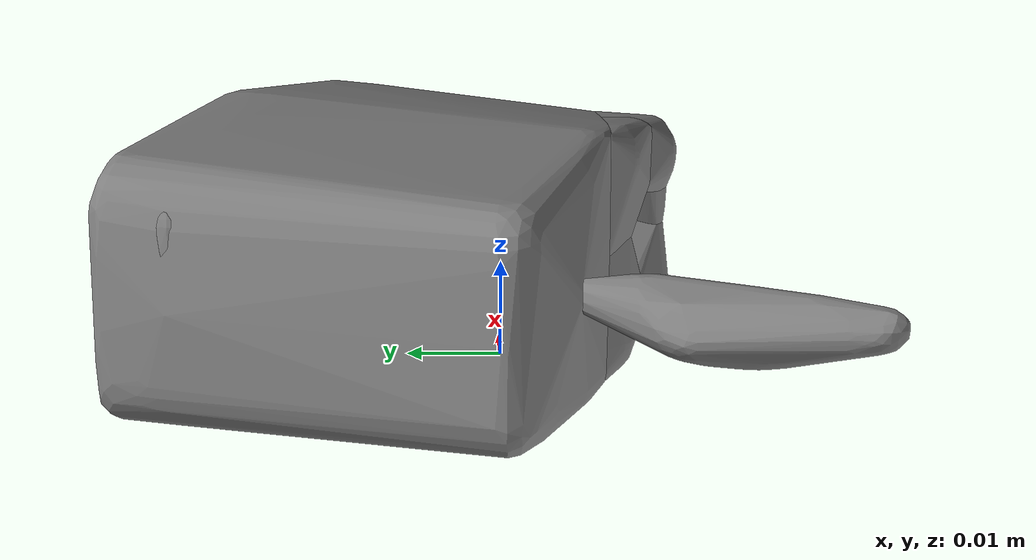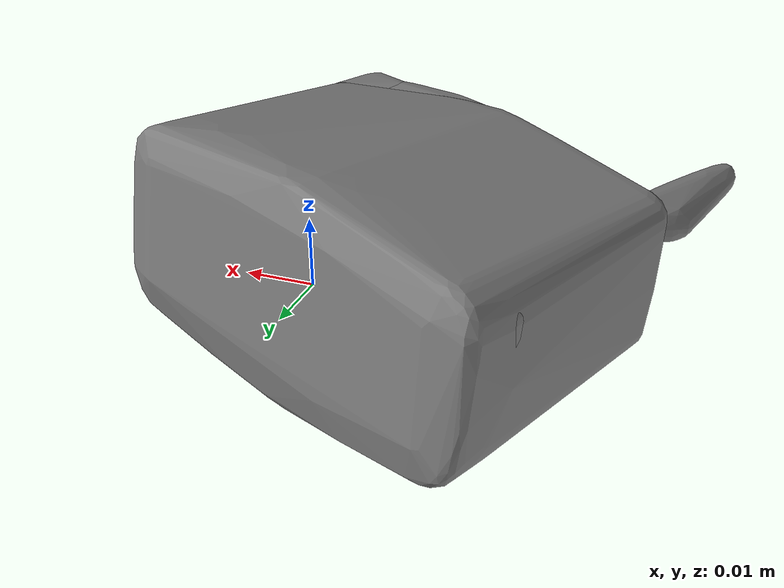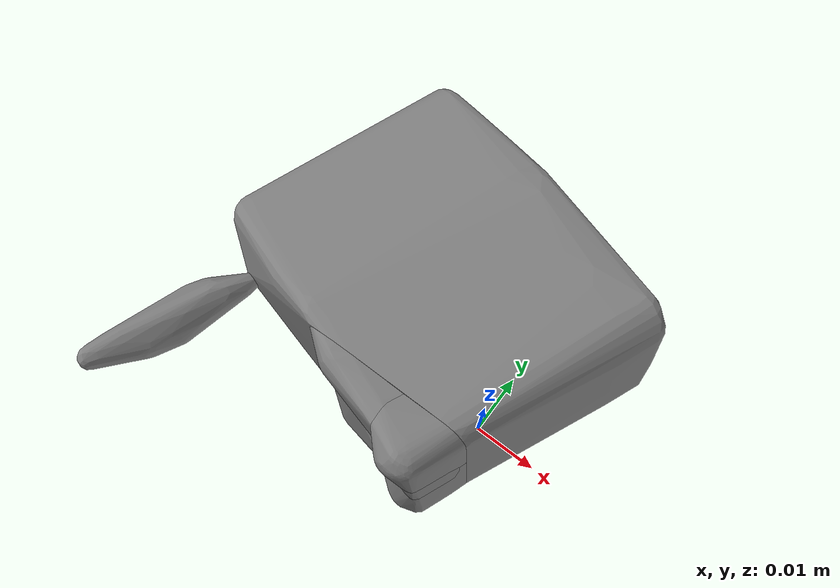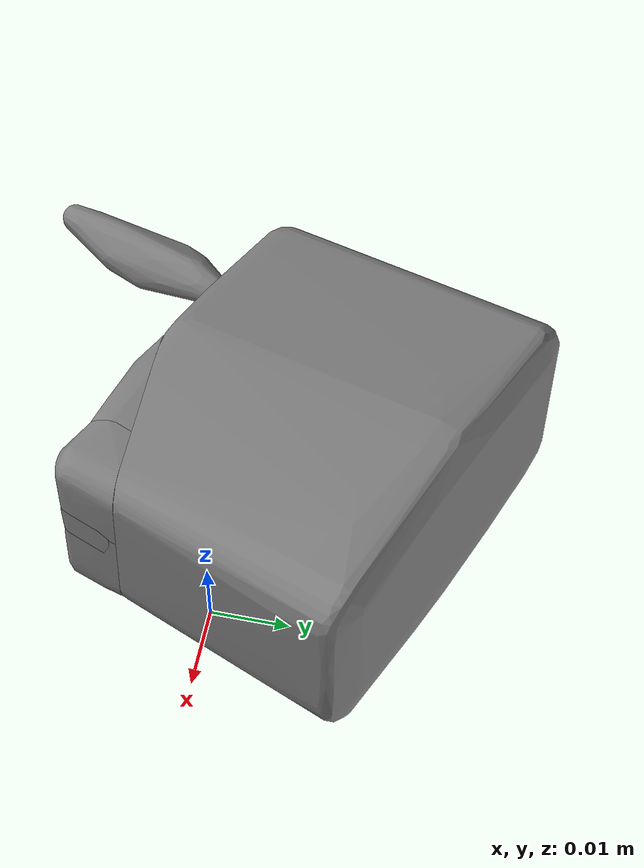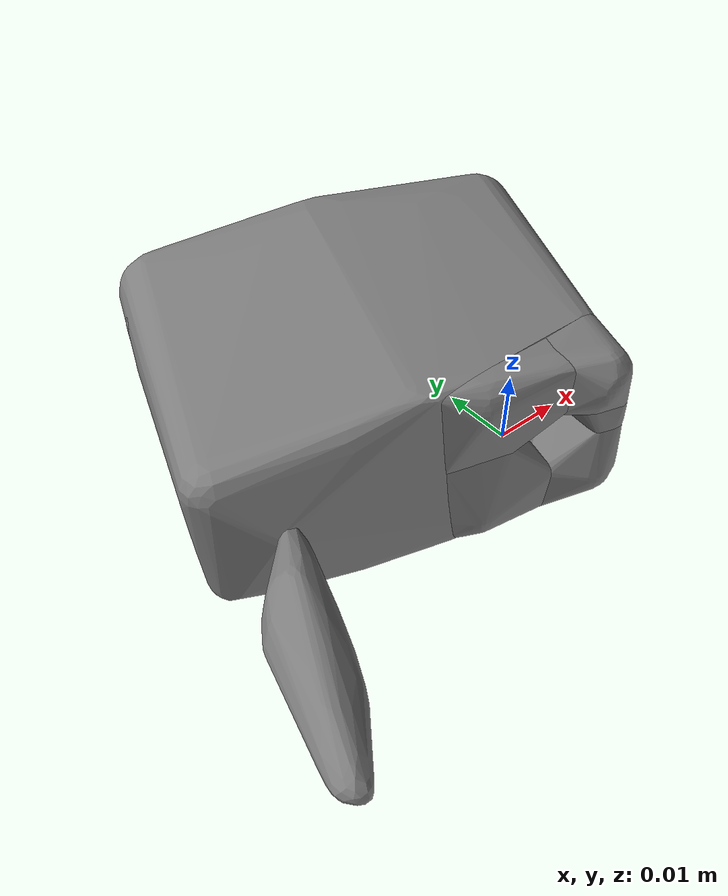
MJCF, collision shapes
<mujoco model="ycb_038_padlock">
  <compiler meshdir="meshes" texturedir="meshes" angle="radian"/>
  <default>
    <default class="visual"><geom contype="0" conaffinity="0" group="2" density="0"/></default>
    <default class="collision"><geom group="3"/></default>
  </default>
  <asset>
    <texture name="ycb_038_padlock_tex" type="2d" file="ycb_038_padlock_texture.png"/>
    <material name="ycb_038_padlock_mat" texture="ycb_038_padlock_tex" specular="0.2" shininess="0.3"/>
    <mesh name="ycb_038_padlock_visual" file="ycb_038_padlock_visual.obj"/>
    <mesh name="ycb_038_padlock_hull0" file="ycb_038_padlock_hull0.obj"/>
    <mesh name="ycb_038_padlock_hull1" file="ycb_038_padlock_hull1.obj"/>
    <mesh name="ycb_038_padlock_hull2" file="ycb_038_padlock_hull2.obj"/>
    <mesh name="ycb_038_padlock_hull3" file="ycb_038_padlock_hull3.obj"/>
    <mesh name="ycb_038_padlock_hull4" file="ycb_038_padlock_hull4.obj"/>
    <mesh name="ycb_038_padlock_hull5" file="ycb_038_padlock_hull5.obj"/>
    <mesh name="ycb_038_padlock_hull6" file="ycb_038_padlock_hull6.obj"/>
    <mesh name="ycb_038_padlock_hull7" file="ycb_038_padlock_hull7.obj"/>
  </asset>
  <worldbody>
    <body name="object" pos="0 0 0">
      <freejoint name="object_free"/>
      <geom type="mesh" mesh="ycb_038_padlock_visual" material="ycb_038_padlock_mat" class="visual"/>
      <geom type="mesh" mesh="ycb_038_padlock_hull0" class="collision"/>
      <geom type="mesh" mesh="ycb_038_padlock_hull1" class="collision"/>
      <geom type="mesh" mesh="ycb_038_padlock_hull2" class="collision"/>
      <geom type="mesh" mesh="ycb_038_padlock_hull3" class="collision"/>
      <geom type="mesh" mesh="ycb_038_padlock_hull4" class="collision"/>
      <geom type="mesh" mesh="ycb_038_padlock_hull5" class="collision"/>
      <geom type="mesh" mesh="ycb_038_padlock_hull6" class="collision"/>
      <geom type="mesh" mesh="ycb_038_padlock_hull7" class="collision"/>
    </body>
  </worldbody>
</mujoco>
